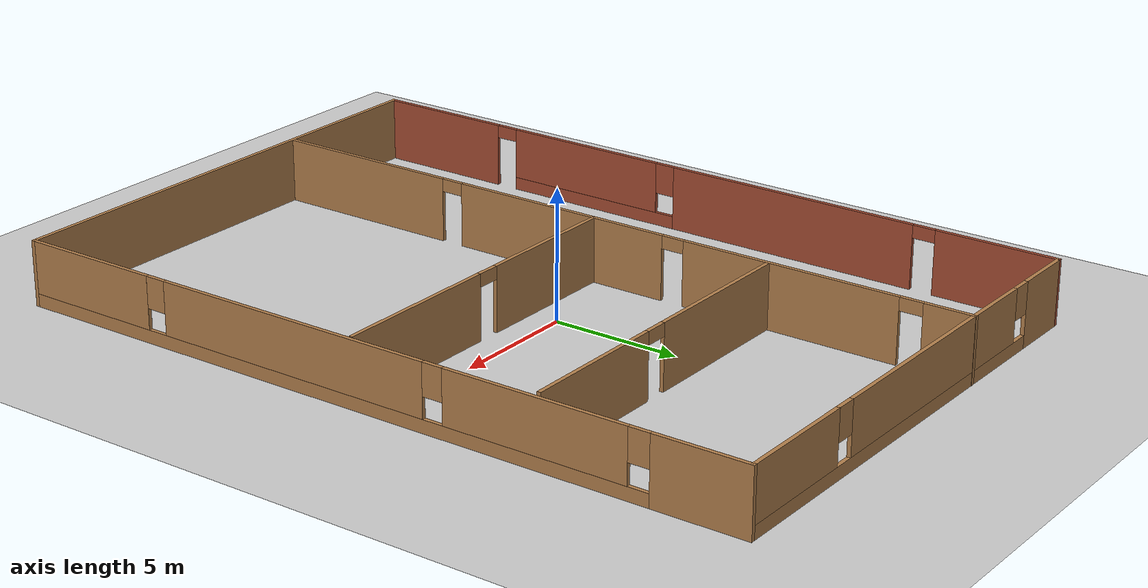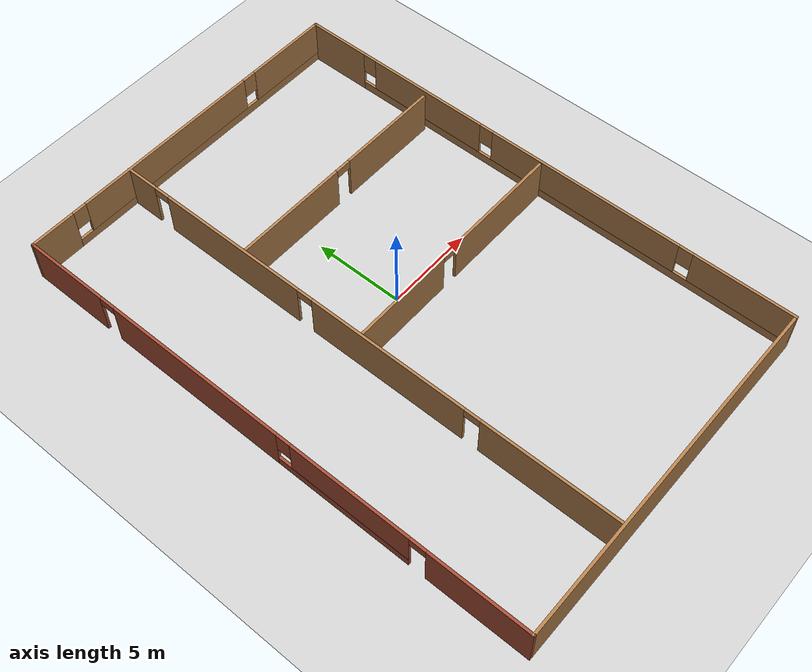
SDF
<sdf version="1.6">
 <world name="default">
  <plugin name="hello" filename="libhello.so"/>
  <light name="sun" type="directional">
   <pose>0 0 10 0 -0 0</pose>
   <diffuse>0.8 0.8 0.8 1</diffuse>
   <specular>0.2 0.2 0.2 1</specular>
   <attenuation>
    <range>1000</range>
    <constant>0.9</constant>
    <linear>0.01</linear>
    <quadratic>0.001</quadratic>
   </attenuation>
   <direction>-0.5 0.1 -0.9</direction>
  </light>
  <model name="ground_plane">
   <static>1</static>
   <link name="link">
    <collision name="collision">
     <geometry><plane><normal>0 0 1</normal><size>100 100</size></plane></geometry>
     <surface><friction><ode><mu>100</mu><mu2>50</mu2></ode></friction></surface>
    </collision>
    <visual name="visual">
     <cast_shadows>0</cast_shadows>
     <geometry><plane><normal>0 0 1</normal><size>100 100</size></plane></geometry>
     <material>
      <script><uri>file://media/materials/scripts/gazebo.material</uri><name>Gazebo/Grey</name></script>
     </material>
    </visual>
   </link>
  </model>
  <gravity>0 0 -9.8</gravity>
  <magnetic_field>6e-06 2.3e-05 -4.2e-05</magnetic_field>
  <atmosphere type="adiabatic"/>
  <physics name="default_physics" default="0" type="ode">
   <max_step_size>0.001</max_step_size>
   <real_time_factor>1</real_time_factor>
   <real_time_update_rate>1000</real_time_update_rate>
  </physics>
  <scene><ambient>0.4 0.4 0.4 1</ambient><background>0.7 0.7 0.7 1</background><shadows>1</shadows></scene>
  <spherical_coordinates>
   <surface_model>EARTH_WGS84</surface_model>
   <latitude_deg>0</latitude_deg>
   <longitude_deg>0</longitude_deg>
   <elevation>0</elevation>
   <heading_deg>0</heading_deg>
  </spherical_coordinates>
  <model name="mybuilding">
   <pose>-0.1778 -0.784294 0 0 -0 0</pose>
   <link name="Wall_10">
    <pose>-9.925 -0.008029 0 0 0 -1.5708</pose>
    <visual name="Wall_10_Visual_0">
     <pose>-12.5796 0 1.25 0 -0 0</pose>
     <geometry><box><size>4.84086 0.15 2.5</size></box></geometry>
     <material>
      <script><uri>file://media/materials/scripts/gazebo.material</uri><name>Gazebo/Bricks</name></script>
      <ambient>0 0 1 1</ambient>
     </material>
     <meta><layer>0</layer></meta>
    </visual>
    <collision name="Wall_10_Collision_0">
     <geometry><box><size>4.84086 0.15 2.5</size></box></geometry>
     <pose>-12.5796 0 1.25 0 -0 0</pose>
    </collision>
    <visual name="Wall_10_Visual_1">
     <pose>-4.10732 0 1.25 0 -0 0</pose>
     <geometry><box><size>10.3036 0.15 2.5</size></box></geometry>
     <material>
      <script><uri>file://media/materials/scripts/gazebo.material</uri><name>Gazebo/Bricks</name></script>
      <ambient>0 0 1 1</ambient>
     </material>
     <meta><layer>0</layer></meta>
    </visual>
    <collision name="Wall_10_Collision_1">
     <geometry><box><size>10.3036 0.15 2.5</size></box></geometry>
     <pose>-4.10732 0 1.25 0 -0 0</pose>
    </collision>
    <visual name="Wall_10_Visual_2">
     <pose>12.2327 0 1.25 0 -0 0</pose>
     <geometry><box><size>5.53454 0.15 2.5</size></box></geometry>
     <material>
      <script><uri>file://media/materials/scripts/gazebo.material</uri><name>Gazebo/Bricks</name></script>
      <ambient>0 0 1 1</ambient>
     </material>
     <meta><layer>0</layer></meta>
    </visual>
    <collision name="Wall_10_Collision_2">
     <geometry><box><size>5.53454 0.15 2.5</size></box></geometry>
     <pose>12.2327 0 1.25 0 -0 0</pose>
    </collision>
    <visual name="Wall_10_Visual_3">
     <pose>4.80498 0 0.25 0 -0 0</pose>
     <geometry><box><size>7.52096 0.15 0.5</size></box></geometry>
     <material>
      <script><uri>file://media/materials/scripts/gazebo.material</uri><name>Gazebo/Bricks</name></script>
      <ambient>0 0 1 1</ambient>
     </material>
     <meta><layer>0</layer></meta>
    </visual>
    <collision name="Wall_10_Collision_3">
     <geometry><box><size>7.52096 0.15 0.5</size></box></geometry>
     <pose>4.80498 0 0.25 0 -0 0</pose>
    </collision>
    <visual name="Wall_10_Visual_4">
     <pose>5.20498 0 1.5 0 -0 0</pose>
     <geometry><box><size>6.72096 0.15 2</size></box></geometry>
     <material>
      <script><uri>file://media/materials/scripts/gazebo.material</uri><name>Gazebo/Bricks</name></script>
      <ambient>0 0 1 1</ambient>
     </material>
     <meta><layer>0</layer></meta>
    </visual>
    <collision name="Wall_10_Collision_4">
     <geometry><box><size>6.72096 0.15 2</size></box></geometry>
     <pose>5.20498 0 1.5 0 -0 0</pose>
    </collision>
    <visual name="Wall_10_Visual_5">
     <pose>1.4445 0 1.9 0 -0 0</pose>
     <geometry><box><size>0.8 0.15 1.2</size></box></geometry>
     <material>
      <script><uri>file://media/materials/scripts/gazebo.material</uri><name>Gazebo/Bricks</name></script>
      <ambient>0 0 1 1</ambient>
     </material>
     <meta><layer>0</layer></meta>
    </visual>
    <collision name="Wall_10_Collision_5">
     <geometry><box><size>0.8 0.15 1.2</size></box></geometry>
     <pose>1.4445 0 1.9 0 -0 0</pose>
    </collision>
    <visual name="Wall_10_Visual_6">
     <pose>-9.70914 0 2.25 0 -0 0</pose>
     <geometry><box><size>0.9 0.15 0.5</size></box></geometry>
     <material>
      <script><uri>file://media/materials/scripts/gazebo.material</uri><name>Gazebo/Bricks</name></script>
      <ambient>0 0 1 1</ambient>
     </material>
     <meta><layer>0</layer></meta>
    </visual>
    <collision name="Wall_10_Collision_6">
     <geometry><box><size>0.9 0.15 0.5</size></box></geometry>
     <pose>-9.70914 0 2.25 0 -0 0</pose>
    </collision>
    <visual name="Wall_10_Visual_7">
     <pose>9.01545 0 2.25 0 -0 0</pose>
     <geometry><box><size>0.9 0.15 0.5</size></box></geometry>
     <material>
      <script><uri>file://media/materials/scripts/gazebo.material</uri><name>Gazebo/Bricks</name></script>
      <ambient>0 0 1 1</ambient>
     </material>
     <meta><layer>0</layer></meta>
    </visual>
    <collision name="Wall_10_Collision_7">
     <geometry><box><size>0.9 0.15 0.5</size></box></geometry>
     <pose>9.01545 0 2.25 0 -0 0</pose>
    </collision>
   </link>
   <link name="Wall_13">
    <pose>-3.70059 0.008029 0 0 0 -1.5708</pose>
    <visual name="Wall_13_Visual_0">
     <pose>-14.0243 0 1.25 0 -0 0</pose>
     <geometry><box><size>1.95137 0.15 2.5</size></box></geometry>
     <material>
      <script><uri>file://media/materials/scripts/gazebo.material</uri><name>Gazebo/Wood</name></script>
      <ambient>0 0 1 1</ambient>
     </material>
     <meta><layer>0</layer></meta>
    </visual>
    <collision name="Wall_13_Collision_0">
     <geometry><box><size>1.95137 0.15 2.5</size></box></geometry>
     <pose>-14.0243 0 1.25 0 -0 0</pose>
    </collision>
    <visual name="Wall_13_Visual_1">
     <pose>-7.82302 0 1.25 0 -0 0</pose>
     <geometry><box><size>8.65122 0.15 2.5</size></box></geometry>
     <material>
      <script><uri>file://media/materials/scripts/gazebo.material</uri><name>Gazebo/Wood</name></script>
      <ambient>0 0 1 1</ambient>
     </material>
     <meta><layer>0</layer></meta>
    </visual>
    <collision name="Wall_13_Collision_1">
     <geometry><box><size>8.65122 0.15 2.5</size></box></geometry>
     <pose>-7.82302 0 1.25 0 -0 0</pose>
    </collision>
    <visual name="Wall_13_Visual_2">
     <pose>1.92488 0 1.25 0 -0 0</pose>
     <geometry><box><size>9.04457 0.15 2.5</size></box></geometry>
     <material>
      <script><uri>file://media/materials/scripts/gazebo.material</uri><name>Gazebo/Wood</name></script>
      <ambient>0 0 1 1</ambient>
     </material>
     <meta><layer>0</layer></meta>
    </visual>
    <collision name="Wall_13_Collision_2">
     <geometry><box><size>9.04457 0.15 2.5</size></box></geometry>
     <pose>1.92488 0 1.25 0 -0 0</pose>
    </collision>
    <visual name="Wall_13_Visual_3">
     <pose>11.1736 0 1.25 0 -0 0</pose>
     <geometry><box><size>7.65284 0.15 2.5</size></box></geometry>
     <material>
      <script><uri>file://media/materials/scripts/gazebo.material</uri><name>Gazebo/Wood</name></script>
      <ambient>0 0 1 1</ambient>
     </material>
     <meta><layer>0</layer></meta>
    </visual>
    <collision name="Wall_13_Collision_3">
     <geometry><box><size>7.65284 0.15 2.5</size></box></geometry>
     <pose>11.1736 0 1.25 0 -0 0</pose>
    </collision>
    <visual name="Wall_13_Visual_4">
     <pose>-12.5986 0 2.25 0 -0 0</pose>
     <geometry><box><size>0.9 0.15 0.5</size></box></geometry>
     <material>
      <script><uri>file://media/materials/scripts/gazebo.material</uri><name>Gazebo/Wood</name></script>
      <ambient>0 0 1 1</ambient>
     </material>
     <meta><layer>0</layer></meta>
    </visual>
    <collision name="Wall_13_Collision_4">
     <geometry><box><size>0.9 0.15 0.5</size></box></geometry>
     <pose>-12.5986 0 2.25 0 -0 0</pose>
    </collision>
    <visual name="Wall_13_Visual_5">
     <pose>-3.0474 0 2.25 0 -0 0</pose>
     <geometry><box><size>0.9 0.15 0.5</size></box></geometry>
     <material>
      <script><uri>file://media/materials/scripts/gazebo.material</uri><name>Gazebo/Wood</name></script>
      <ambient>0 0 1 1</ambient>
     </material>
     <meta><layer>0</layer></meta>
    </visual>
    <collision name="Wall_13_Collision_5">
     <geometry><box><size>0.9 0.15 0.5</size></box></geometry>
     <pose>-3.0474 0 2.25 0 -0 0</pose>
    </collision>
    <visual name="Wall_13_Visual_6">
     <pose>6.89716 0 2.25 0 -0 0</pose>
     <geometry><box><size>0.9 0.15 0.5</size></box></geometry>
     <material>
      <script><uri>file://media/materials/scripts/gazebo.material</uri><name>Gazebo/Wood</name></script>
      <ambient>0 0 1 1</ambient>
     </material>
     <meta><layer>0</layer></meta>
    </visual>
    <collision name="Wall_13_Collision_6">
     <geometry><box><size>0.9 0.15 0.5</size></box></geometry>
     <pose>6.89716 0 2.25 0 -0 0</pose>
    </collision>
   </link>
   <link name="Wall_15">
    <pose>3.05016 -0.404863 0 0 -0 0</pose>
    <visual name="Wall_15_Visual_0">
     <pose>-3.81442 0 1.25 0 -0 0</pose>
     <geometry><box><size>5.87116 0.15 2.5</size></box></geometry>
     <material>
      <script><uri>file://media/materials/scripts/gazebo.material</uri><name>Gazebo/Wood</name></script>
      <ambient>0 0 1 1</ambient>
     </material>
     <meta><layer>0</layer></meta>
    </visual>
    <collision name="Wall_15_Collision_0">
     <geometry><box><size>5.87116 0.15 2.5</size></box></geometry>
     <pose>-3.81442 0 1.25 0 -0 0</pose>
    </collision>
    <visual name="Wall_15_Visual_1">
     <pose>3.38558 0 1.25 0 -0 0</pose>
     <geometry><box><size>6.72884 0.15 2.5</size></box></geometry>
     <material>
      <script><uri>file://media/materials/scripts/gazebo.material</uri><name>Gazebo/Wood</name></script>
      <ambient>0 0 1 1</ambient>
     </material>
     <meta><layer>0</layer></meta>
    </visual>
    <collision name="Wall_15_Collision_1">
     <geometry><box><size>6.72884 0.15 2.5</size></box></geometry>
     <pose>3.38558 0 1.25 0 -0 0</pose>
    </collision>
    <visual name="Wall_15_Visual_2">
     <pose>-0.428837 0 2.25 0 -0 0</pose>
     <geometry><box><size>0.9 0.15 0.5</size></box></geometry>
     <material>
      <script><uri>file://media/materials/scripts/gazebo.material</uri><name>Gazebo/Wood</name></script>
      <ambient>0 0 1 1</ambient>
     </material>
     <meta><layer>0</layer></meta>
    </visual>
    <collision name="Wall_15_Collision_2">
     <geometry><box><size>0.9 0.15 0.5</size></box></geometry>
     <pose>-0.428837 0 2.25 0 -0 0</pose>
    </collision>
   </link>
   <link name="Wall_17">
    <pose>2.99934 7.00164 0 0 -0 0</pose>
    <visual name="Wall_17_Visual_0">
     <pose>-3.38982 0 1.25 0 -0 0</pose>
     <geometry><box><size>6.47037 0.15 2.5</size></box></geometry>
     <material>
      <script><uri>file://media/materials/scripts/gazebo.material</uri><name>Gazebo/Wood</name></script>
      <ambient>0 0 1 1</ambient>
     </material>
     <meta><layer>0</layer></meta>
    </visual>
    <collision name="Wall_17_Collision_0">
     <geometry><box><size>6.47037 0.15 2.5</size></box></geometry>
     <pose>-3.38982 0 1.25 0 -0 0</pose>
    </collision>
    <visual name="Wall_17_Visual_1">
     <pose>3.68518 0 1.25 0 -0 0</pose>
     <geometry><box><size>5.87964 0.15 2.5</size></box></geometry>
     <material>
      <script><uri>file://media/materials/scripts/gazebo.material</uri><name>Gazebo/Wood</name></script>
      <ambient>0 0 1 1</ambient>
     </material>
     <meta><layer>0</layer></meta>
    </visual>
    <collision name="Wall_17_Collision_1">
     <geometry><box><size>5.87964 0.15 2.5</size></box></geometry>
     <pose>3.68518 0 1.25 0 -0 0</pose>
    </collision>
    <visual name="Wall_17_Visual_2">
     <pose>0.295365 0 2.25 0 -0 0</pose>
     <geometry><box><size>0.9 0.15 0.5</size></box></geometry>
     <material>
      <script><uri>file://media/materials/scripts/gazebo.material</uri><name>Gazebo/Wood</name></script>
      <ambient>0 0 1 1</ambient>
     </material>
     <meta><layer>0</layer></meta>
    </visual>
    <collision name="Wall_17_Collision_2">
     <geometry><box><size>0.9 0.15 0.5</size></box></geometry>
     <pose>0.295365 0 2.25 0 -0 0</pose>
    </collision>
   </link>
   <link name="Wall_2">
    <pose>0 14.917 0 0 -0 0</pose>
    <visual name="Wall_2_Visual_0">
     <pose>-8.71655 0 1.25 0 -0 0</pose>
     <geometry><box><size>2.56689 0.15 2.5</size></box></geometry>
     <material>
      <script><uri>file://media/materials/scripts/gazebo.material</uri><name>Gazebo/Wood</name></script>
      <ambient>0 0 1 1</ambient>
     </material>
     <meta><layer>0</layer></meta>
    </visual>
    <collision name="Wall_2_Collision_0">
     <geometry><box><size>2.56689 0.15 2.5</size></box></geometry>
     <pose>-8.71655 0 1.25 0 -0 0</pose>
    </collision>
    <visual name="Wall_2_Visual_1">
     <pose>1.28344 0 0.25 0 -0 0</pose>
     <geometry><box><size>17.4331 0.15 0.5</size></box></geometry>
     <material>
      <script><uri>file://media/materials/scripts/gazebo.material</uri><name>Gazebo/Wood</name></script>
      <ambient>0 0 1 1</ambient>
     </material>
     <meta><layer>0</layer></meta>
    </visual>
    <collision name="Wall_2_Collision_1">
     <geometry><box><size>17.4331 0.15 0.5</size></box></geometry>
     <pose>1.28344 0 0.25 0 -0 0</pose>
    </collision>
    <visual name="Wall_2_Visual_2">
     <pose>-1.15311 0 1.5 0 -0 0</pose>
     <geometry><box><size>10.96 0.15 2</size></box></geometry>
     <material>
      <script><uri>file://media/materials/scripts/gazebo.material</uri><name>Gazebo/Wood</name></script>
      <ambient>0 0 1 1</ambient>
     </material>
     <meta><layer>0</layer></meta>
    </visual>
    <collision name="Wall_2_Collision_2">
     <geometry><box><size>10.96 0.15 2</size></box></geometry>
     <pose>-1.15311 0 1.5 0 -0 0</pose>
    </collision>
    <visual name="Wall_2_Visual_3">
     <pose>7.56344 0 1.5 0 -0 0</pose>
     <geometry><box><size>4.87311 0.15 2</size></box></geometry>
     <material>
      <script><uri>file://media/materials/scripts/gazebo.material</uri><name>Gazebo/Wood</name></script>
      <ambient>0 0 1 1</ambient>
     </material>
     <meta><layer>0</layer></meta>
    </visual>
    <collision name="Wall_2_Collision_3">
     <geometry><box><size>4.87311 0.15 2</size></box></geometry>
     <pose>7.56344 0 1.5 0 -0 0</pose>
    </collision>
    <visual name="Wall_2_Visual_4">
     <pose>-7.03311 0 1.9 0 -0 0</pose>
     <geometry><box><size>0.8 0.15 1.2</size></box></geometry>
     <material>
      <script><uri>file://media/materials/scripts/gazebo.material</uri><name>Gazebo/Wood</name></script>
      <ambient>0 0 1 1</ambient>
     </material>
     <meta><layer>0</layer></meta>
    </visual>
    <collision name="Wall_2_Collision_4">
     <geometry><box><size>0.8 0.15 1.2</size></box></geometry>
     <pose>-7.03311 0 1.9 0 -0 0</pose>
    </collision>
    <visual name="Wall_2_Visual_5">
     <pose>4.72689 0 1.9 0 -0 0</pose>
     <geometry><box><size>0.8 0.15 1.2</size></box></geometry>
     <material>
      <script><uri>file://media/materials/scripts/gazebo.material</uri><name>Gazebo/Wood</name></script>
      <ambient>0 0 1 1</ambient>
     </material>
     <meta><layer>0</layer></meta>
    </visual>
    <collision name="Wall_2_Collision_5">
     <geometry><box><size>0.8 0.15 1.2</size></box></geometry>
     <pose>4.72689 0 1.9 0 -0 0</pose>
    </collision>
   </link>
   <link name="Wall_3">
    <pose>9.925 -0.008029 0 0 0 -1.5708</pose>
    <visual name="Wall_3_Visual_0">
     <pose>-13.1903 0 1.25 0 -0 0</pose>
     <geometry><box><size>3.61947 0.15 2.5</size></box></geometry>
     <material>
      <script><uri>file://media/materials/scripts/gazebo.material</uri><name>Gazebo/Wood</name></script>
      <ambient>0 0 1 1</ambient>
     </material>
     <meta><layer>0</layer></meta>
    </visual>
    <collision name="Wall_3_Collision_0">
     <geometry><box><size>3.61947 0.15 2.5</size></box></geometry>
     <pose>-13.1903 0 1.25 0 -0 0</pose>
    </collision>
    <visual name="Wall_3_Visual_1">
     <pose>1.80973 0 0.25 0 -0 0</pose>
     <geometry><box><size>26.3805 0.15 0.5</size></box></geometry>
     <material>
      <script><uri>file://media/materials/scripts/gazebo.material</uri><name>Gazebo/Wood</name></script>
      <ambient>0 0 1 1</ambient>
     </material>
     <meta><layer>0</layer></meta>
    </visual>
    <collision name="Wall_3_Collision_1">
     <geometry><box><size>26.3805 0.15 0.5</size></box></geometry>
     <pose>1.80973 0 0.25 0 -0 0</pose>
    </collision>
    <visual name="Wall_3_Visual_2">
     <pose>-7.03827 0 1.5 0 -0 0</pose>
     <geometry><box><size>7.08452 0.15 2</size></box></geometry>
     <material>
      <script><uri>file://media/materials/scripts/gazebo.material</uri><name>Gazebo/Wood</name></script>
      <ambient>0 0 1 1</ambient>
     </material>
     <meta><layer>0</layer></meta>
    </visual>
    <collision name="Wall_3_Collision_2">
     <geometry><box><size>7.08452 0.15 2</size></box></geometry>
     <pose>-7.03827 0 1.5 0 -0 0</pose>
    </collision>
    <visual name="Wall_3_Visual_3">
     <pose>2.93288 0 1.5 0 -0 0</pose>
     <geometry><box><size>11.2578 0.15 2</size></box></geometry>
     <material>
      <script><uri>file://media/materials/scripts/gazebo.material</uri><name>Gazebo/Wood</name></script>
      <ambient>0 0 1 1</ambient>
     </material>
     <meta><layer>0</layer></meta>
    </visual>
    <collision name="Wall_3_Collision_3">
     <geometry><box><size>11.2578 0.15 2</size></box></geometry>
     <pose>2.93288 0 1.5 0 -0 0</pose>
    </collision>
    <visual name="Wall_3_Visual_4">
     <pose>12.1809 0 1.5 0 -0 0</pose>
     <geometry><box><size>5.63822 0.15 2</size></box></geometry>
     <material>
      <script><uri>file://media/materials/scripts/gazebo.material</uri><name>Gazebo/Wood</name></script>
      <ambient>0 0 1 1</ambient>
     </material>
     <meta><layer>0</layer></meta>
    </visual>
    <collision name="Wall_3_Collision_4">
     <geometry><box><size>5.63822 0.15 2</size></box></geometry>
     <pose>12.1809 0 1.5 0 -0 0</pose>
    </collision>
    <visual name="Wall_3_Visual_5">
     <pose>-10.9805 0 1.9 0 -0 0</pose>
     <geometry><box><size>0.8 0.15 1.2</size></box></geometry>
     <material>
      <script><uri>file://media/materials/scripts/gazebo.material</uri><name>Gazebo/Wood</name></script>
      <ambient>0 0 1 1</ambient>
     </material>
     <meta><layer>0</layer></meta>
    </visual>
    <collision name="Wall_3_Collision_5">
     <geometry><box><size>0.8 0.15 1.2</size></box></geometry>
     <pose>-10.9805 0 1.9 0 -0 0</pose>
    </collision>
    <visual name="Wall_3_Visual_6">
     <pose>-3.09601 0 1.9 0 -0 0</pose>
     <geometry><box><size>0.8 0.15 1.2</size></box></geometry>
     <material>
      <script><uri>file://media/materials/scripts/gazebo.material</uri><name>Gazebo/Wood</name></script>
      <ambient>0 0 1 1</ambient>
     </material>
     <meta><layer>0</layer></meta>
    </visual>
    <collision name="Wall_3_Collision_6">
     <geometry><box><size>0.8 0.15 1.2</size></box></geometry>
     <pose>-3.09601 0 1.9 0 -0 0</pose>
    </collision>
    <visual name="Wall_3_Visual_7">
     <pose>8.96178 0 1.9 0 -0 0</pose>
     <geometry><box><size>0.8 0.15 1.2</size></box></geometry>
     <material>
      <script><uri>file://media/materials/scripts/gazebo.material</uri><name>Gazebo/Wood</name></script>
      <ambient>0 0 1 1</ambient>
     </material>
     <meta><layer>0</layer></meta>
    </visual>
    <collision name="Wall_3_Collision_7">
     <geometry><box><size>0.8 0.15 1.2</size></box></geometry>
     <pose>8.96178 0 1.9 0 -0 0</pose>
    </collision>
   </link>
   <link name="Wall_5">
    <collision name="Wall_5_Collision">
     <geometry><box><size>20 0.15 2.5</size></box></geometry>
     <pose>0 0 1.25 0 -0 0</pose>
    </collision>
    <visual name="Wall_5_Visual">
     <pose>0 0 1.25 0 -0 0</pose>
     <geometry><box><size>20 0.15 2.5</size></box></geometry>
     <material>
      <script><uri>file://media/materials/scripts/gazebo.material</uri><name>Gazebo/Wood</name></script>
      <ambient>0 0 1 1</ambient>
     </material>
     <meta><layer>0</layer></meta>
    </visual>
    <pose>0 -14.933 0 0 -0 3.14159</pose>
   </link>
   <static>1</static>
  </model>
 </world>
</sdf>
